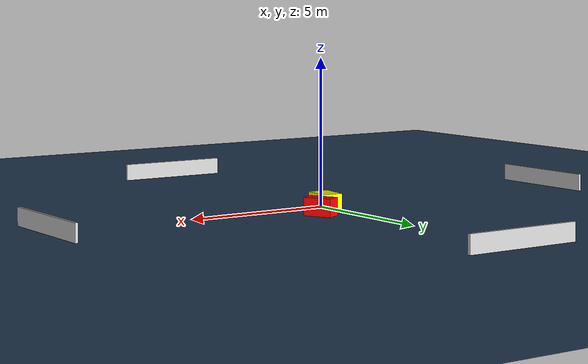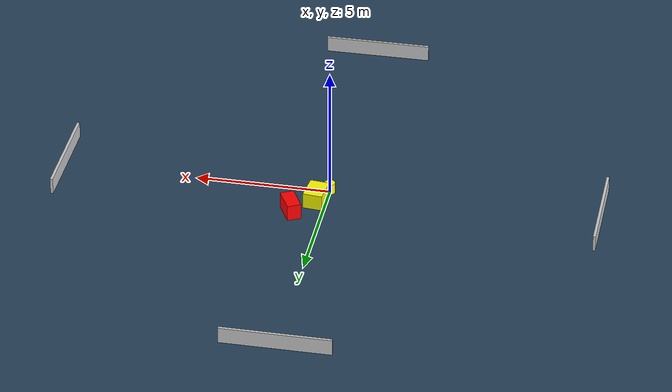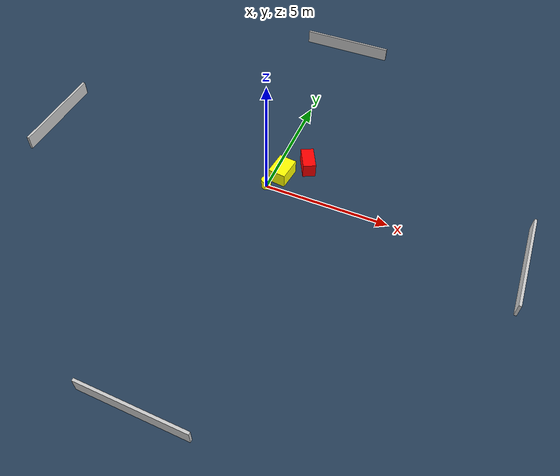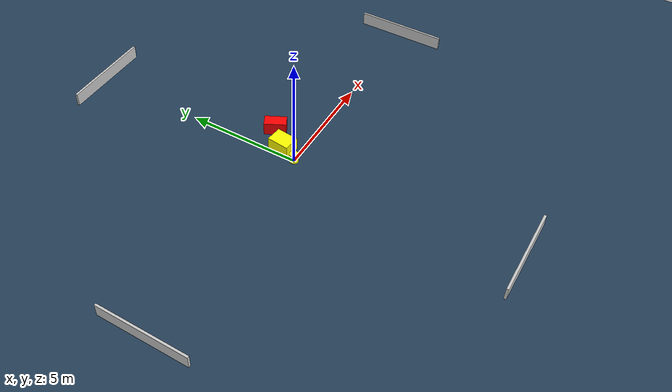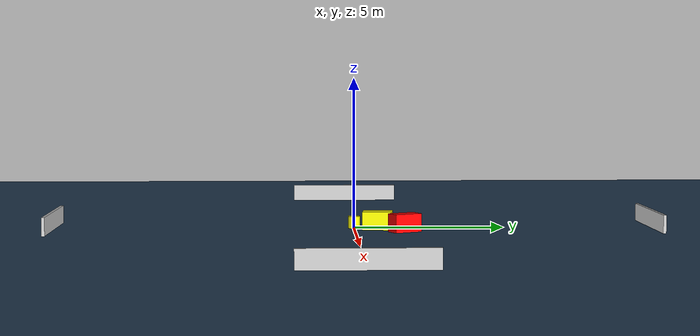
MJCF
<?xml version="1.0" ?>
<mujoco model="generated_environment">
  <option timestep="0.01" integrator="RK4" cone="elliptic"/>
  <default>
    <geom density="1"/>
  </default>
  <asset>
    <texture builtin="gradient" height="3072" name="skybox" rgb1="0.3 0.5 0.7" rgb2="0 0 0" type="skybox" width="512"/>
    <texture builtin="checker" height="300" name="groundplane" rgb1="0.2 0.3 0.4" rgb2="0.1 0.2 0.3" type="2d" width="300"/>
    <material name="groundplane" reflectance="0.2" texrepeat="5 5" texture="groundplane"/>
  </asset>
  <worldbody>
    <light dir="0 0 -1" directional="true" pos="0 0 1.5"/>
    <geom condim="3" friction="0.5 0.005 0.001" material="groundplane" name="floor" pos="0 0 0" size="0 0 0.05" type="plane"/>
    <body name="walls">
      <geom name="wall_1" condim="4" pos="-10.0 0.0 0.3" rgba="0.800000011920929 0.800000011920929 0.800000011920929 1.0" size="0.05 2.0 0.3" type="box"/>
      <geom name="wall_2" condim="4" pos="10.0 0.0 0.3" rgba="0.800000011920929 0.800000011920929 0.800000011920929 1.0" size="0.05 2.0 0.3" type="box"/>
      <geom name="wall_3" condim="4" pos="0.0 -10.0 0.3" rgba="0.800000011920929 0.800000011920929 0.800000011920929 1.0" size="2.0 0.05 0.3" type="box"/>
      <geom name="wall_4" condim="4" pos="0.0 10.0 0.3" rgba="0.800000011920929 0.800000011920929 0.800000011920929 1.0" size="2.0 0.05 0.3" type="box"/>
    </body>
    <body name="robot">
      <joint name="joint_x" type="slide" pos="0 0 0" axis="1 0 0"/>
      <joint name="joint_y" type="slide" pos="0 0 0" axis="0 1 0"/>
      <geom name="robot" type="cylinder" pos="0.0 0.0 0.2" size="0.2 0.2 0.0" mass="5.0" friction="1.0 0.005 0.0001" condim="4" rgba="1.0 1.0 0.0 1.0"/>
    </body>
    <body name="obstacle_1_movable">
      <geom name="obstacle_1_movable" condim="4" pos="0.35919077841690444 0.7724225350663733 0.3" euler="0 0 173.61150445956744" friction="0.0 0.005 0.001" rgba="1.0 1.0 0.0 1.0" size="0.3597394366112917 0.4861742046280944 0.3" type="box" mass="0.1"/>
      <joint type="free"/>
    </body>
    <body name="obstacle_2_static">
      <geom name="obstacle_2_static" condim="4" pos="1.1441788579982817 1.6189169382621909 0.3" euler="0 0 27.165462779501787" friction="0.0 0.005 0.001" rgba="1.0 0.0 0.0 1.0" size="0.2590265285246388 0.4815391769811 0.3" type="box"/>
    </body>
  </worldbody>
  <actuator>
    <motor name="actuator_x" joint="joint_x" gear="1" ctrlrange="-1 1"/>
    <motor name="actuator_y" joint="joint_y" gear="1" ctrlrange="-1 1"/>
  </actuator>
</mujoco>
